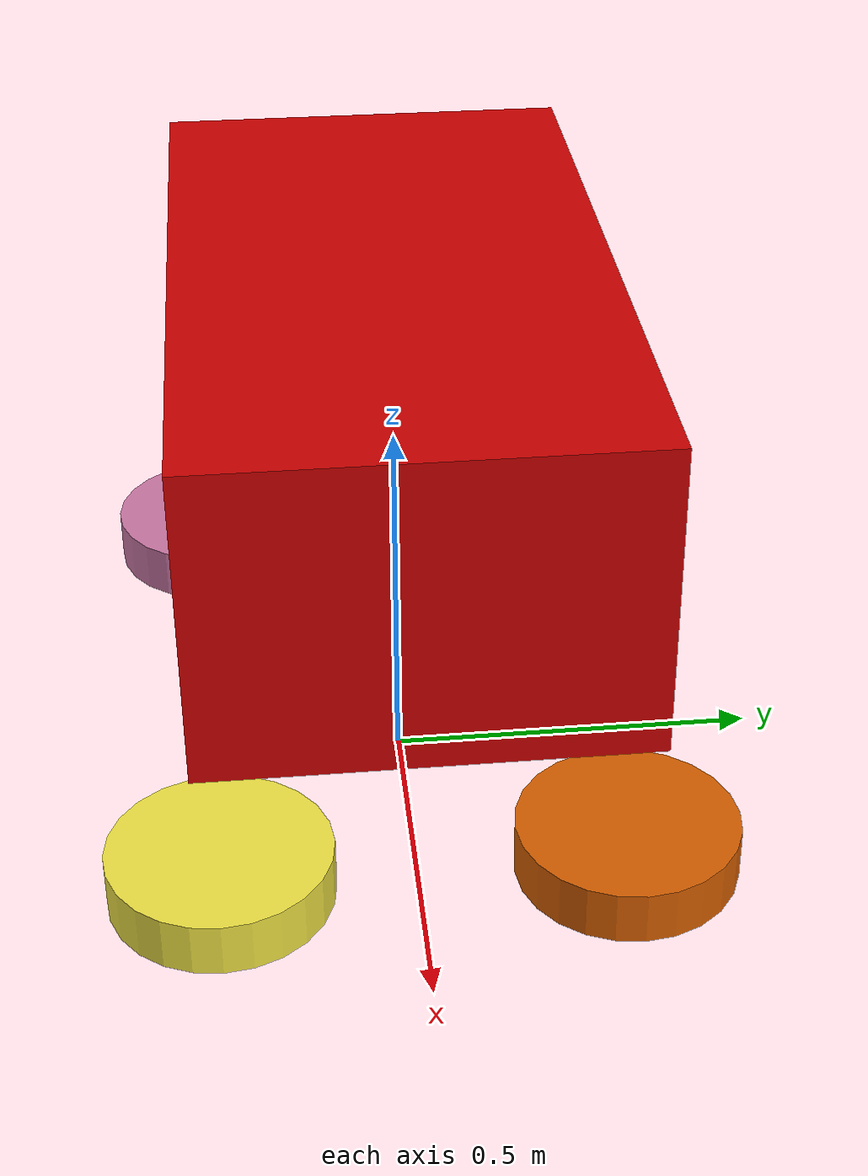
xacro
<?xml version='1.0'?>

<robot name="f1_car" xmlns:xacro="http://www.ros.org/wiki/xacro">

  <xacro:property name="camera_link" value="0.05" /> <!-- Size of square 'camera' box -->

  <!-- STEP 1 - Gazebo plugin -->
  <xacro:include filename="$(find robotrendszerek_projekt)/urdf/f1_car.gazebo" />

  <!-- STEP 2 - RViz colors -->
  <xacro:include filename="$(find robotrendszerek_projekt)/urdf/materials.xacro" />

  <!-- Import macros -->
  <xacro:include filename="$(find robotrendszerek_projekt)/urdf/f1_car_macro.xacro" />

  <!-- STEP 3 - Robot chassis -->
  <link name="base_footprint"></link>

  <joint name="base_footprint_joint" type="fixed">
    <origin xyz="0 0 0" rpy="0 0 0" />
    <parent link="base_footprint"/>
    <child link="base_link" />
  </joint>

	<link name="base_link">
    <collision name="collision">
    	<origin rpy="0 0 0" xyz="0 0 0.35" />
      <geometry>
      	<box size="1.0 0.55 0.4"/>
       </geometry>
    </collision>
    <visual name="base_link_visual">
    	<origin rpy="0 0 0" xyz="0 0 0.55" />
      <geometry>
      	<box size="1.0 0.55 0.4"/>
      </geometry>
			<material name="red"/>
    </visual>
  	<xacro:default_inertial mass="10"/>
	</link>

  <!-- STEP 4 - Wheels -->
  <xacro:front_wheel right_left="right" reflect_right_left="1"/>
  <xacro:front_wheel right_left="left"  reflect_right_left="-1"/>
  <xacro:wheel       right_left="right" reflect_right_left="1"  front_rear="rear" reflect_front_rear="-1"/>
  <xacro:wheel       right_left="left"  reflect_right_left="-1" front_rear="rear" reflect_front_rear="-1"/>

    <!-- Camera -->
    <link name="camera_link">
      <collision>
        <origin xyz="0 0 0" rpy="0 0 0"/>
        <geometry>
          <box size="${camera_link/3} ${camera_link} ${camera_link/2}"/>
        </geometry>
      </collision>
      <visual>
        <origin xyz="0 0 0" rpy="0 0 0"/>
        <geometry>
          <box size="${camera_link/3} ${camera_link} ${camera_link/2}"/>
        </geometry>
        <material name="black"/>
      </visual>
      <inertial>
        <mass value="1e-5" />
        <origin xyz="0 0 0" rpy="0 0 0"/>
        <inertia ixx="1e-6" ixy="0" ixz="0" iyy="1e-6" iyz="0" izz="1e-6" />
      </inertial>
    </link>

    <joint name="base_to_camera" type="fixed">
      <axis xyz="0 1 0" />
      <parent link="base_link"/>
      <child link="camera_link"/>
      <origin rpy="0 0 0" xyz="0.45 0 0.72"/>
    </joint>

  <!-- STEP 5 - Gazebo physics -->
  <gazebo reference="front_left_wheel">
		<xacro:default_wheel_physics/>
  </gazebo>

  <gazebo reference="front_right_wheel">
    <xacro:default_wheel_physics/>
  </gazebo>

  <gazebo reference="rear_left_wheel">
    <xacro:default_wheel_physics/>
  </gazebo>

  <gazebo reference="rear_right_wheel">
    <xacro:default_wheel_physics/>
  </gazebo>

</robot>

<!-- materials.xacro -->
<robot>

  <material name="black">
    <color rgba="0.0 0.0 0.0 1.0"/>
  </material>

  <material name="dark_gray">
      <color rgba="0.5 0.5 0.5 1"/>
  </material>

  <material name="gray">
      <color rgba="0.753 0.753 0.753 1"/>
  </material>

  <material name="silver">
      <color rgba="0.88 0.88 0.88 1"/>
  </material>

  <material name="white">
    <color rgba="1.0 1.0 1.0 1.0"/>
  </material>

  <material name="red">
    <color rgba="0.8 0.0 0.0 1.0"/>
  </material>

  <material name="green">
    <color rgba="0.0 0.8 0.0 1.0"/>
  </material>

  <material name="blue">
    <color rgba="0.0 0.0 0.8 1.0"/>
  </material>

  <material name="orange">
    <color rgba="${255/255} ${108/255} ${10/255} 1.0"/>
  </material>

  <material name="yellow">
    <color rgba="${204/255} ${204/255} ${0/255} 1"/>
  </material>

  <material name="brown">
    <color rgba="${222/255} ${207/255} ${195/255} 1.0"/>
  </material>

</robot>

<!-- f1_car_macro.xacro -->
<robot name="origins" xmlns:xacro="http://www.ros.org/wiki/xacro">

    <!-- Constants for math -->
    <xacro:property name="PI" value="3.1415926535897931" />

    <!-- Constants for robot dimensions -->
    <xacro:property name="length_wheel" value="0.07" />
    <xacro:property name="radius_wheel" value="0.14" />
    <xacro:property name="base_center_x" value="0.015" />
    <xacro:property name="length_from_base_center_to_wheel_x" value="0.395" />
    <xacro:property name="length_from_base_to_wheel_front_x" value="0.41" />
    <xacro:property name="length_from_base_to_wheel_rear_x" value="0.38" />
    <xacro:property name="length_from_base_to_wheel_y" value="0.25" />

    <xacro:macro name="default_inertial" params="mass">
        <inertial>
            <mass value="${mass}" />
            <inertia ixx="1.0" ixy="0.0" ixz="0.0"
                     iyy="1.0" iyz="0.0"
                     izz="1.0" />
        </inertial>
    </xacro:macro>

    <!-- wheel macro -->
    <xacro:macro name="wheel" params="right_left reflect_right_left front_rear reflect_front_rear">
        <link name="${right_left}_${front_rear}_wheel">
            <visual>
                <!-- when reflect_right_left = 1 to be 0 reflect_right_left= -1 to be PI -->
                <origin rpy="${PI/2-reflect_right_left*PI/2} 0 0" xyz="0 0 0"/>
                <geometry>
                    <cylinder length="${length_wheel}" radius="${radius_wheel}"/>
                </geometry>
                ->
            </visual>
            <collision>
                <origin rpy="${PI/2} 0 0" xyz="0 0 0"/>
                <geometry>
                    <cylinder length="${length_wheel}" radius="${radius_wheel}"/>
                </geometry>
            </collision>
            <xacro:default_inertial mass="1"/>
        </link>
        <joint name="${right_left}_${front_rear}_wheel_joint" type="continuous">
            <axis xyz="0 1 0"/>
            <parent link="base_link"/>
            <child link="${right_left}_${front_rear}_wheel"/>
            <origin xyz="${base_center_x+reflect_front_rear*length_from_base_center_to_wheel_x} ${-reflect_right_left*length_from_base_to_wheel_y} ${radius_wheel}"/>
        </joint>

    </xacro:macro>

    <!-- front wheel macro -->
    <xacro:macro name="front_wheel" params="right_left reflect_right_left">
        <!-- steer_right -->
        <link name="steer_${right_left}">
            <inertial>
                <mass value="1.0" />
                <inertia ixx="1.0" ixy="0.0" ixz="0.0"
                         iyy="1.0" iyz="0.0"
                         izz="1.0" />
            </inertial>
        </link>

        <joint name="${right_left}_front_steer_joint" type="continuous">
            <axis xyz="0 0 1"/>
            <parent link="base_link"/>
            <child link="steer_${right_left}"/>
        <origin xyz="${base_center_x+length_from_base_center_to_wheel_x} ${-reflect_right_left*length_from_base_to_wheel_y} 0.30"/>
        </joint>

        <link name="${right_left}_front_wheel">
            <visual>
                <!-- when reflect_right_left = 1 to be 0 reflect_right_left= -1 to be PI -->
                <origin rpy="${PI/2-reflect_right_left*PI/2} 0 0" xyz="0 0 0"/>
                <geometry>
                    <cylinder length="${length_wheel}" radius="${radius_wheel}"/>
                </geometry>
                ->
            </visual>
            <collision>
                <origin rpy="${PI/2} 0 0" xyz="0 0 0"/>
                <geometry>
                    <cylinder length="${length_wheel}" radius="${radius_wheel}"/>
                </geometry>
            </collision>
            <xacro:default_inertial mass="1"/>
        </link>

        <joint name="${right_left}_front_wheel_joint" type="continuous">
            <axis xyz="0 1 0"/>
            <parent link="steer_${right_left}"/>
            <child link="${right_left}_front_wheel"/>
            <origin xyz="0 0 -0.16"/>
        </joint>

    </xacro:macro>

    <!-- wheel physics macro -->
    <xacro:macro name="default_wheel_physics">
        <!-- kp and kd for rubber -->
        <kp>1000000.0</kp>
        <kd>100.0</kd>
        <mu1>1.5</mu1>
        <mu2>1.5</mu2>
        <fdir1>1 0 0</fdir1>
        <maxVel>1.0</maxVel>
        <minDepth>0.00</minDepth>
    </xacro:macro>

</robot>
